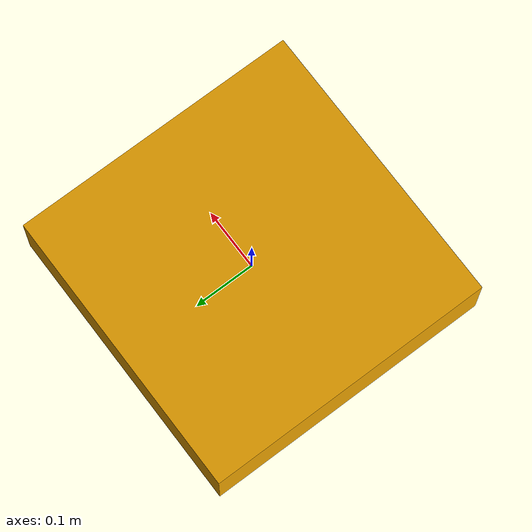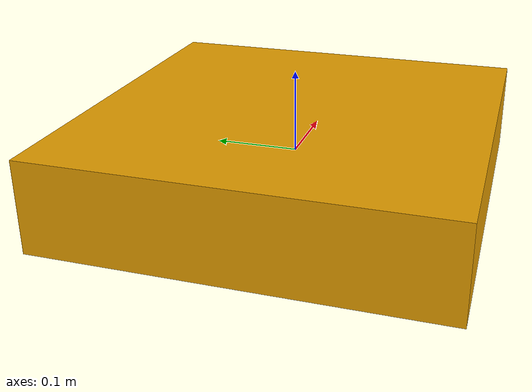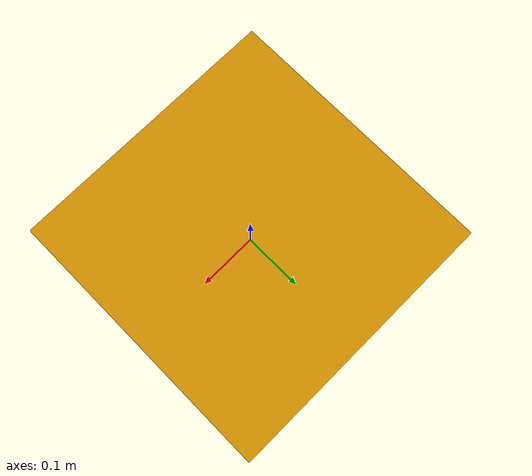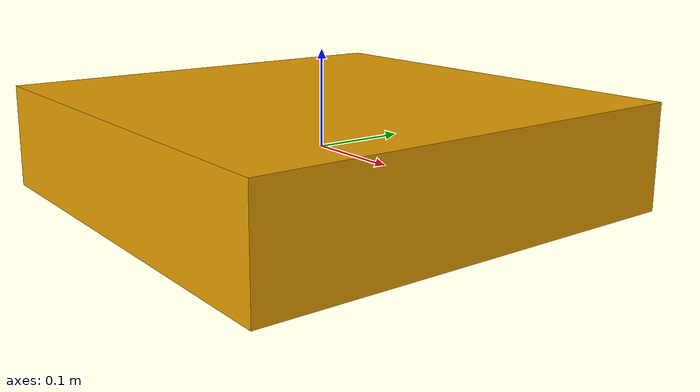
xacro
<?xml version="1.0"?>
<!--
  forest_runner.urdf.xacro
  Low-Altitude Bush/Forest Runner — base description.
  Camera, VOC, and audio sensor plugins added in Task 3.
-->
<robot name="forest_runner" xmlns:xacro="http://www.ros.org/wiki/xacro">

  <link name="base_link">
    <inertial>
      <mass value="1.5"/>
      <origin xyz="0 0 0" rpy="0 0 0"/>
      <inertia ixx="0.0347" ixy="0" ixz="0"
               iyy="0.0458" iyz="0"
               izz="0.0977"/>
    </inertial>
    <visual>
      <geometry><box size="0.47 0.47 0.11"/></geometry>
    </visual>
    <collision>
      <geometry><box size="0.47 0.47 0.11"/></geometry>
    </collision>
  </link>

  <!-- Forward-facing camera placeholder — plugin added in Task 3 -->
  <link name="camera_link">
    <visual><geometry><box size="0.02 0.02 0.02"/></geometry></visual>
  </link>
  <joint name="camera_joint" type="fixed">
    <parent link="base_link"/>
    <child link="camera_link"/>
    <origin xyz="0.1 0 -0.04" rpy="0 0 0"/>
  </joint>

  <!-- VOC sensor placeholder -->
  <link name="voc_sensor_link">
    <visual><geometry><cylinder radius="0.01" length="0.02"/></geometry></visual>
  </link>
  <joint name="voc_sensor_joint" type="fixed">
    <parent link="base_link"/>
    <child link="voc_sensor_link"/>
    <origin xyz="-0.05 0 -0.03" rpy="0 0 0"/>
  </joint>

  <!-- Microphone placeholder -->
  <link name="mic_link">
    <visual><geometry><sphere radius="0.008"/></geometry></visual>
  </link>
  <joint name="mic_joint" type="fixed">
    <parent link="base_link"/>
    <child link="mic_link"/>
    <origin xyz="0 0.05 0" rpy="0 0 0"/>
  </joint>

</robot>
